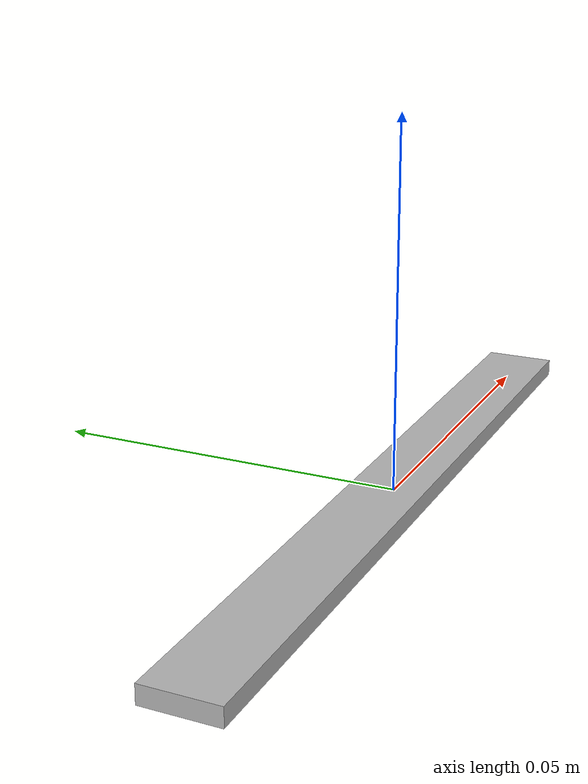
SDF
<sdf version='1.6'>
  <model name='simple_mug'>
    <link name='main_body'>
      <pose frame=''>0 0 0 0 -0 0</pose>
      <inertial>
        <pose frame=''>0.01 0 0.05 0 -0 0</pose>
        <mass>0.094</mass>
        <inertia>
          <ixx>0.000156</ixx>
          <ixy>0</ixy>
          <ixz>0</ixz>
          <iyy>0.000156</iyy>
          <iyz>0</iyz>
          <izz>0.00015</izz>
        </inertia>
      </inertial>

      <collision name="main_body_collision">

              <geometry>
                <box>
                  <size>0.115 0.01 0.0025</size>
                </box>
              </geometry>
              <surface>
                <friction>
                  <ode>
                    <mu>1.0</mu>
                    <mu2>0.5</mu2>
                  </ode>
                </friction>
              </surface>
      </collision>

      <visual name='main_body_visual'>
                            <geometry>
                              <box>
                                <size>0.115 0.01 0.0025</size>
                              </box>
                            </geometry>
      </visual>

    </link>
  </model>
</sdf>
